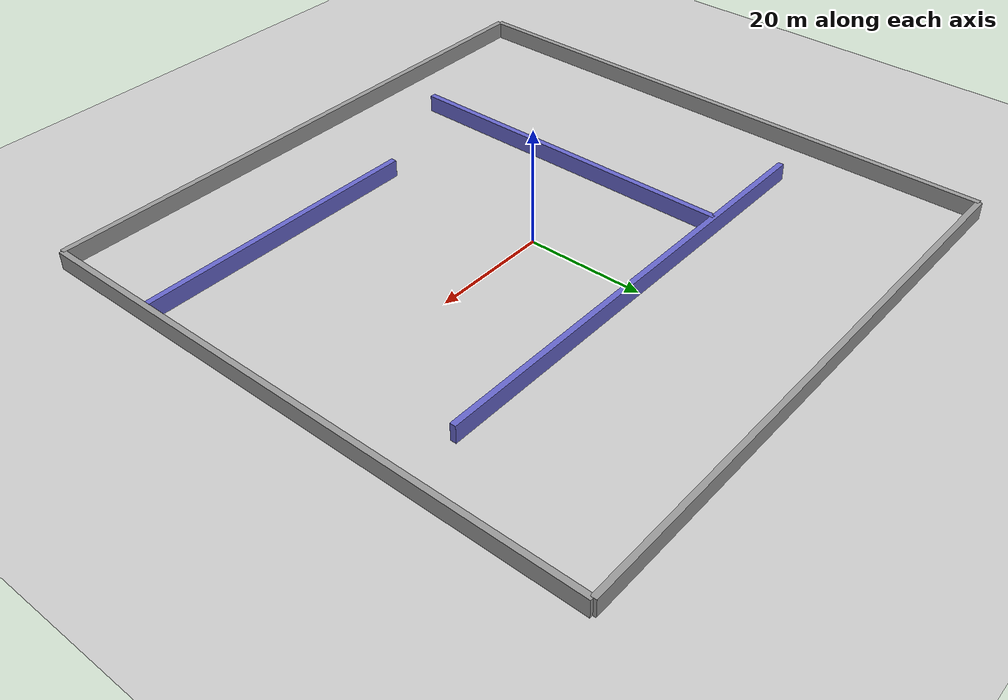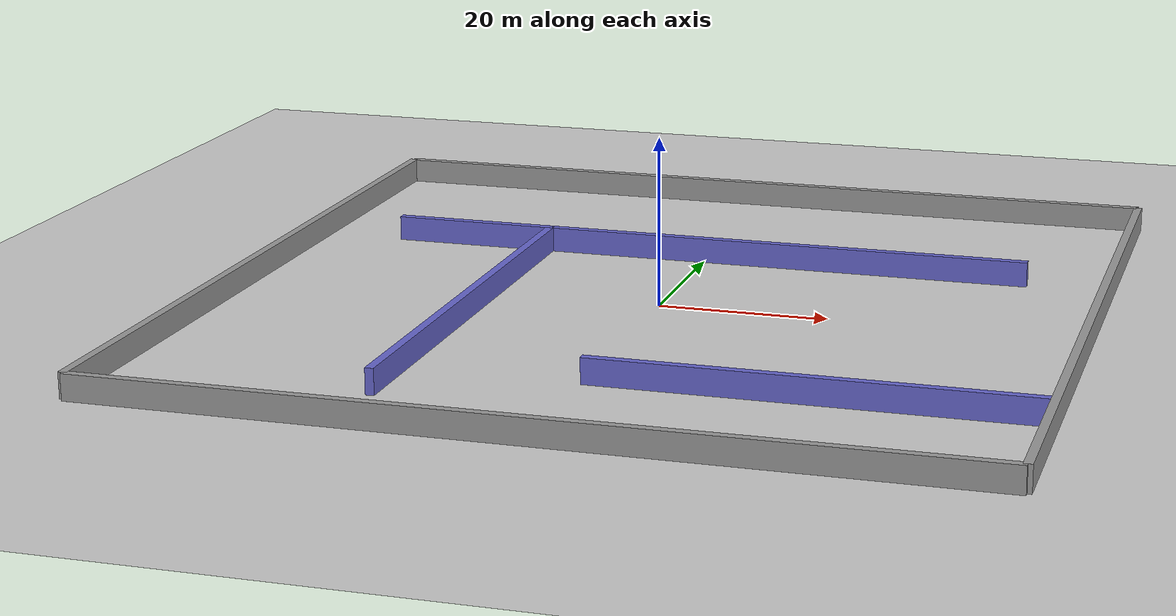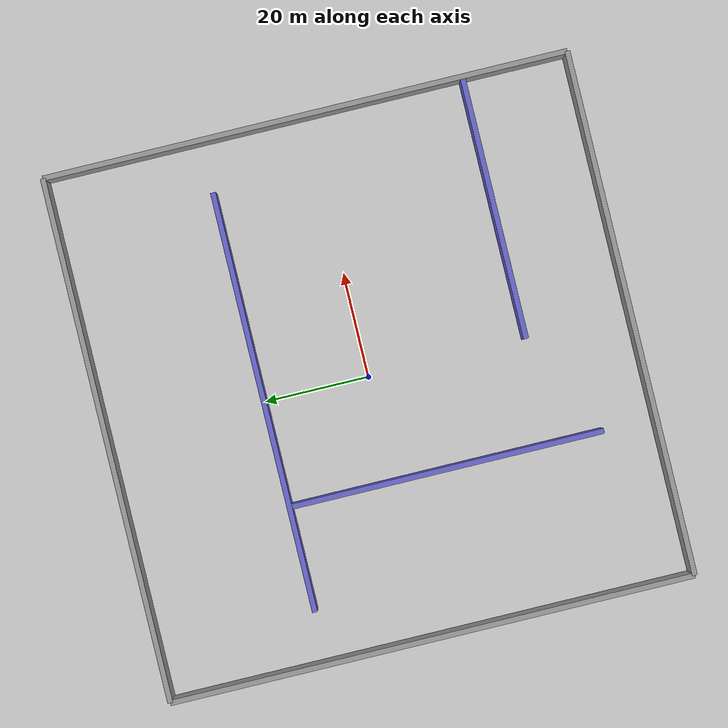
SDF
<?xml version="1.0" ?>
<sdf version="1.6">
  <world name="maze_world">
    <!-- Gravity -->
    <gravity>0 0 -9.8</gravity>

    <!-- Ground -->
    <include>
      <uri>model://ground_plane</uri>
    </include>

    <!-- Sun -->
    <include>
      <uri>model://sun</uri>
    </include>

    <!-- Physics -->
    <physics type="ode">
      <real_time_update_rate>1000</real_time_update_rate>
      <max_step_size>0.001</max_step_size>
    </physics>

    <!-- ===== Maze Walls (Labyrinth) ===== -->
    <!-- Outer Boundary Walls -->
    <model name="outer_wall_north">
      <pose>0 50 1.5 0 0 0</pose>
      <link name="wall">
        <collision name="collision">
          <geometry>
            <box><size>100 1 3</size></box>
          </geometry>
        </collision>
        <visual name="visual">
          <geometry>
            <box><size>100 1 3</size></box>
          </geometry>
          <material><ambient>0.6 0.6 0.6 1</ambient></material>
        </visual>
      </link>
    </model>

    <model name="outer_wall_south">
      <pose>0 -50 1.5 0 0 0</pose>
      <link name="wall">
        <collision name="collision">
          <geometry>
            <box><size>100 1 3</size></box>
          </geometry>
        </collision>
        <visual name="visual">
          <geometry>
            <box><size>100 1 3</size></box>
          </geometry>
          <material><ambient>0.6 0.6 0.6 1</ambient></material>
        </visual>
      </link>
    </model>

    <model name="outer_wall_east">
      <pose>50 0 1.5 0 0 0</pose>
      <link name="wall">
        <collision name="collision">
          <geometry>
            <box><size>1 100 3</size></box>
          </geometry>
        </collision>
        <visual name="visual">
          <geometry>
            <box><size>1 100 3</size></box>
          </geometry>
          <material><ambient>0.6 0.6 0.6 1</ambient></material>
        </visual>
      </link>
    </model>

    <model name="outer_wall_west">
      <pose>-50 0 1.5 0 0 0</pose>
      <link name="wall">
        <collision name="collision">
          <geometry>
            <box><size>1 100 3</size></box>
          </geometry>
        </collision>
        <visual name="visual">
          <geometry>
            <box><size>1 100 3</size></box>
          </geometry>
          <material><ambient>0.6 0.6 0.6 1</ambient></material>
        </visual>
      </link>
    </model>

    <!-- Interior Maze Walls (example corridors) -->
    <model name="maze_wall_1">
      <pose>0 20 1.5 0 0 0</pose>
      <link name="wall">
        <collision name="collision">
          <geometry>
            <box><size>80 1 3</size></box>
          </geometry>
        </collision>
        <visual name="visual">
          <geometry>
            <box><size>80 1 3</size></box>
          </geometry>
          <material><ambient>0.4 0.4 0.8 1</ambient></material>
        </visual>
      </link>
    </model>

    <model name="maze_wall_2">
      <pose>-20 -10 1.5 0 0 0</pose>
      <link name="wall">
        <collision name="collision">
          <geometry>
            <box><size>1 60 3</size></box>
          </geometry>
        </collision>
        <visual name="visual">
          <geometry>
            <box><size>1 60 3</size></box>
          </geometry>
          <material><ambient>0.4 0.4 0.8 1</ambient></material>
        </visual>
      </link>
    </model>

    <model name="maze_wall_3">
      <pose>25 -30 1.5 0 0 0</pose>
      <link name="wall">
        <collision name="collision">
          <geometry>
            <box><size>50 1 3</size></box>
          </geometry>
        </collision>
        <visual name="visual">
          <geometry>
            <box><size>50 1 3</size></box>
          </geometry>
          <material><ambient>0.4 0.4 0.8 1</ambient></material>
        </visual>
      </link>
    </model>

    <!-- You can add more walls to make complex labyrinth paths -->

  </world>
</sdf>
